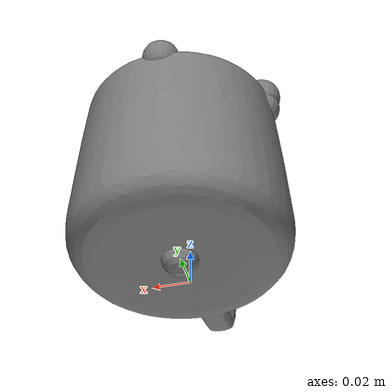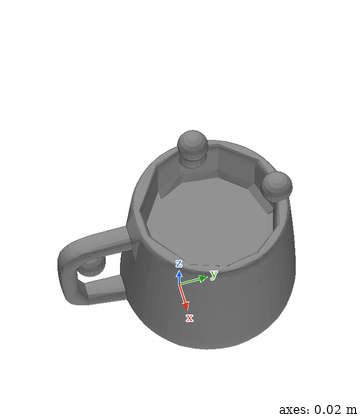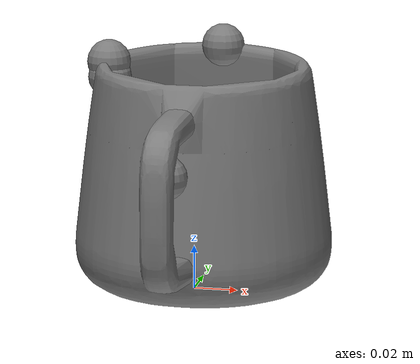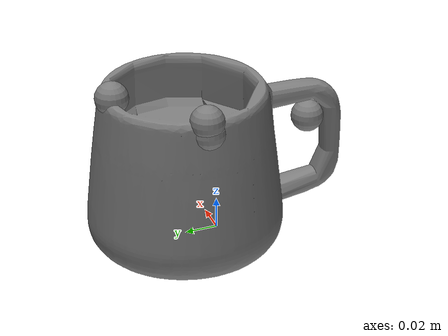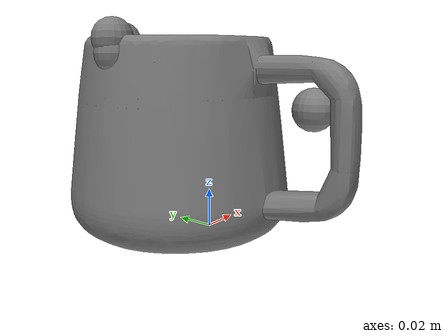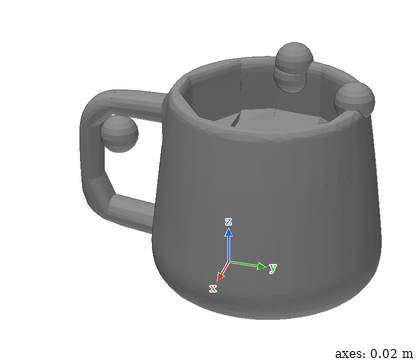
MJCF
<mujoco model="039_mug_11">
  <asset>
    <mesh name="039_mug_collision_11" file="039_mug_11.stl" scale="1.0 1.0 1.0"/>
  </asset>

  <worldbody>
<body name="039_mug_11">
  <geom name="039_mug_collision_11" type="mesh" mesh="039_mug_collision_11" />
  <site name="039_mug_11_keypoints_0" pos="0.0 0.063691 0.100379" size="0.01"/>
  <site name="039_mug_11_keypoints_1" pos="-0.044993 0.022383 0.099327" size="0.01"/>
  <site name="039_mug_11_keypoints_2" pos="-0.044423 0.021701 0.092269" size="0.01"/>
  <site name="039_mug_11_keypoints_3" pos="0.0 -0.059162 0.067182" size="0.01"/>
  <site name="039_mug_11_keypoints_4" pos="0.0 0.021553 7e-06" size="0.01"/>
  <site name="039_mug_11_keypoints_5" pos="0.0 0.021414 6e-06" size="0.01"/>
</body>
  </worldbody>
</mujoco>
